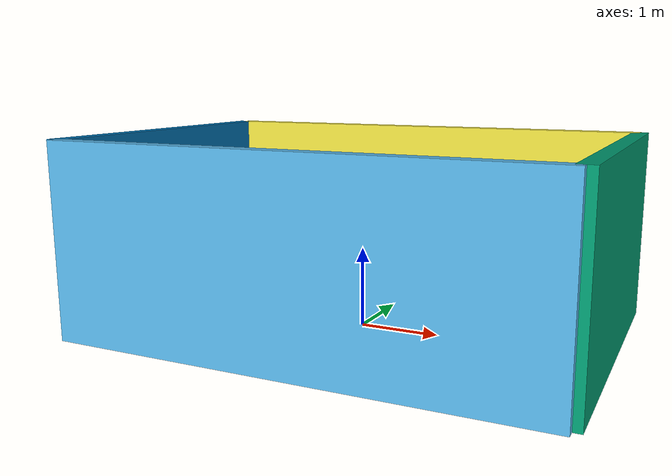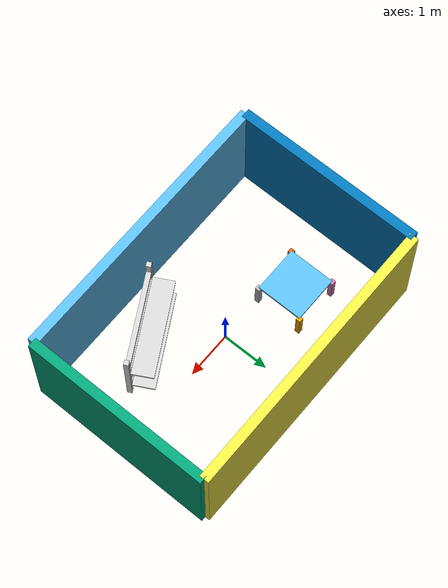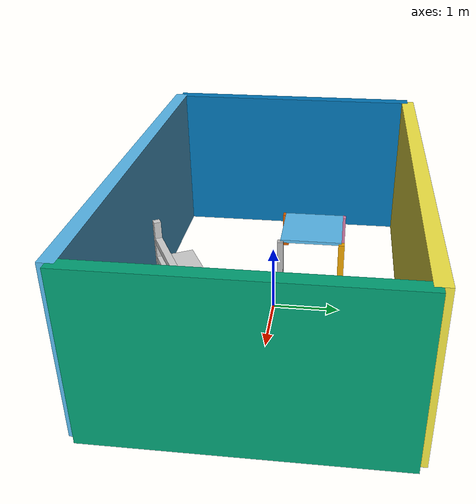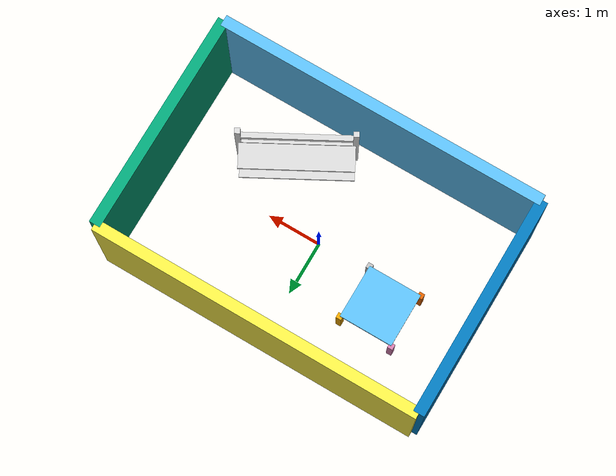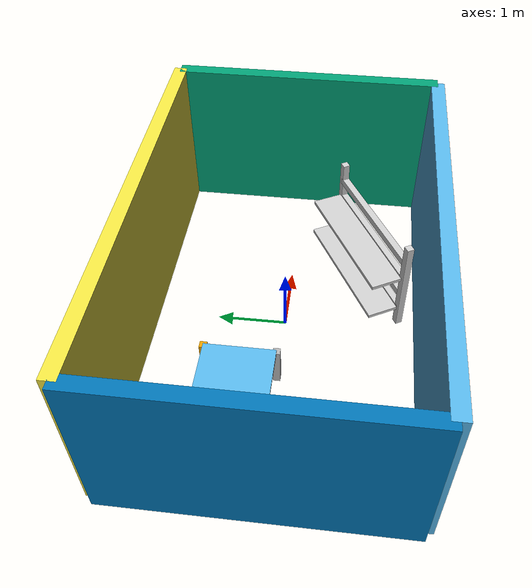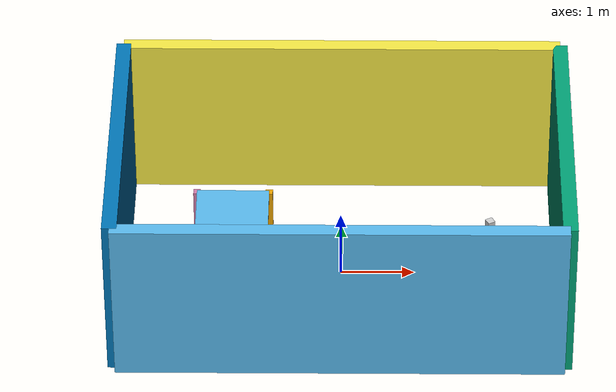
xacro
<?xml version="1.0"?>
<robot name="storage"
       version="1.0"
       xmlns:xacro="http://ros.org/wiki/xacro">

  <material name="grey">
    <color rgba="0.8 0.8 0.8 1"/>
  </material>

  <link name="storage_origin"/>

  <!-- WALLS -->

  <xacro:macro name="wall" params="parent name size *origin">
    <link name="${name}_link">
      <visual>
        <geometry>
          <box size="${size}"/>
        </geometry>
      </visual>
      <collision>
        <geometry>
          <box size="${size}"/>
        </geometry>
      </collision>
    </link>

    <joint type="fixed" name="${name}_joint">
      <xacro:insert_block name="origin"/>
      <parent link="${parent}"/>
      <child link="${name}_link"/>
    </joint>
  </xacro:macro>

  <xacro:property name="wall_thickness" value="0.2" />
  <xacro:property name="wall_height" value="2.4" />
  <xacro:property name="room_link" value="storage_origin" />
  <xacro:wall parent="${room_link}" name="back_wall"
        size="6.0 ${wall_thickness} ${wall_height}">
    <origin xyz="0.0 -2.0 ${wall_height/2}" rpy="0 0 0"/>
  </xacro:wall>
  <xacro:wall parent="${room_link}" name="left_wall"
        size="${wall_thickness} 4.0 ${wall_height}">
    <origin xyz="3.0 0.0 ${wall_height/2}" rpy="0 0 0"/>
  </xacro:wall>
  <xacro:wall parent="${room_link}" name="front_wall"
        size="6.0 ${wall_thickness} ${wall_height}">
    <origin xyz="0.0 2.0 ${wall_height/2}" rpy="0 0 0"/>
  </xacro:wall>
  <xacro:wall parent="${room_link}" name="right_wall"
        size="${wall_thickness} 4.0 ${wall_height}">
    <origin xyz="-3.0 0.0 ${wall_height/2}" rpy="0 0 0"/>
  </xacro:wall>

  <!-- SHELF -->

  <link name="left_leg">
    <visual>
      <material name="grey"/>
      <origin xyz="0 0 0.75"/>
      <geometry>
        <box size="0.1 0.1 1.5"/>
      </geometry>
    </visual>
    <collision>
      <origin xyz="0 0 0.75"/>
      <geometry>
        <box size="0.1 0.1 1.5"/>
      </geometry>
    </collision>
  </link>

  <link name="right_leg">
    <visual>
      <geometry>
        <box size="0.1 0.1 1.5"/>
      </geometry>
      <origin xyz="0 0 0.75"/>
      <material name="grey"/>

    </visual>
    <collision>
      <origin xyz="0 0 0.75"/>
      <geometry>
        <box size="0.1 0.1 1.5"/>
      </geometry>
    </collision>
  </link>

  <link name="bar0">
    <visual>
      <material name="grey"/>
      <origin xyz="-1 0 0"/>
      <geometry>
        <box size="2 0.1 0.1"/>
      </geometry>
    </visual>
    <collision>
      <origin xyz="-1 0 0"/>
      <geometry>
        <box size="2 0.1 0.1"/>
      </geometry>
    </collision>
  </link>

  <link name="board0">
    <visual>
      <material name="grey"/>
      <origin xyz="0 0.25 0"/>
      <geometry>
        <box size="2 0.5 0.05"/>
      </geometry>
    </visual>
    <collision>
      <origin xyz="0 0.25 0"/>
      <geometry>
        <box size="2 0.5 0.05"/>
      </geometry>
    </collision>
  </link>

  <link name="bar1">
    <visual>
      <material name="grey"/>
      <origin xyz="-1 0 0"/>
      <geometry>
        <box size="2 0.1 0.1"/>
      </geometry>
    </visual>
    <collision>
      <origin xyz="-1 0 0"/>
      <geometry>
        <box size="2 0.1 0.1"/>
      </geometry>
    </collision>
  </link>

  <link name="bar2">
    <visual>
      <material name="grey"/>
      <origin xyz="-1 0 0"/>
      <geometry>
        <box size="2 0.1 0.1"/>
      </geometry>
    </visual>
    <collision>
      <origin xyz="-1 0 0"/>
      <geometry>
        <box size="2 0.1 0.1"/>
      </geometry>
    </collision>
  </link>

  <link name="board2">
    <visual>
      <material name="grey"/>
      <origin xyz="0 0.25 0"/>
      <geometry>
        <box size="2 0.5 0.05"/>
      </geometry>
    </visual>
    <collision>
      <origin xyz="0 0.25 0"/>
      <geometry>
        <box size="2 0.5 0.05"/>
      </geometry>
    </collision>
  </link>

  <link name="bar3">
    <visual>
      <material name="grey"/>
      <origin xyz="-1 0 0"/>
      <geometry>
        <box size="2 0.1 0.1"/>
      </geometry>
    </visual>
    <collision>
      <origin xyz="-1 0 0"/>
      <geometry>
        <box size="2 0.1 0.1"/>
      </geometry>
    </collision>
  </link>

  <joint name="board0_to_bar0" type="fixed">
    <parent link="bar0"/>
    <child link="board0"/>
    <origin xyz="-1 0 0"/>
  </joint>

  <joint name="board2_to_bar2" type="fixed">
    <parent link="bar2"/>
    <child link="board2"/>
    <origin xyz="-1 0 0"/>
  </joint>

  <joint name="bar3_to_left_leg" type="fixed">
    <parent link="left_leg"/>
    <child link="bar3"/>
    <origin xyz="0 0 1.2"/>
  </joint>

  <joint name="bar2_to_left_leg" type="fixed">
    <parent link="left_leg"/>
    <child link="bar2"/>
    <origin xyz="0 0 0.9"/>
  </joint>

  <joint name="bar1_to_left_leg" type="fixed">
    <parent link="left_leg"/>
    <child link="bar1"/>
    <origin xyz="0 0 0.6"/>
  </joint>

  <joint name="bar0_to_left_leg" type="fixed">
    <parent link="left_leg"/>
    <child link="bar0"/>
    <origin xyz="0 0 0.3"/>
  </joint>

  <joint name="left_to_right_leg" type="fixed">
    <parent link="left_leg"/>
    <child link="right_leg"/>
    <origin xyz="-2 0 0"/>
  </joint>

  <joint name="left_leg_to_storage_origin" type="fixed">
    <parent link="storage_origin"/>
    <child link="left_leg"/>
    <origin xyz="2.0 -0.7 0" rpy="0 0 0.5"/>
  </joint>

  <!-- TABLE -->

  <link name="left_front_leg">
    <collision>
      <origin xyz="0 0 0.3"/>
      <geometry>
        <box size="0.1 0.1 0.6"/>
      </geometry>
    </collision>
    <visual>
      <origin xyz="0 0 0.3"/>
      <geometry>
        <box size="0.1 0.1 0.6"/>
      </geometry>
    </visual>
  </link>

  <link name="right_front_leg">
    <collision>
      <origin xyz="0 0 0.3"/>
      <geometry>
        <box size="0.1 0.1 0.6"/>
      </geometry>
    </collision>
    <visual>
      <origin xyz="0 0 0.3"/>
      <geometry>
        <box size="0.1 0.1 0.6"/>
      </geometry>
    </visual>
  </link>

  <link name="left_back_leg">
    <collision>
      <origin xyz="0 0 0.3"/>
      <geometry>
        <box size="0.1 0.1 0.6"/>
      </geometry>
    </collision>
    <visual>
      <origin xyz="0 0 0.3"/>
      <geometry>
        <box size="0.1 0.1 0.6"/>
      </geometry>
    </visual>
  </link>

  <link name="right_back_leg">
    <collision>
      <origin xyz="0 0 0.3"/>
      <geometry>
        <box size="0.1 0.1 0.6"/>
      </geometry>
    </collision>
    <visual>
      <origin xyz="0 0 0.3"/>
      <geometry>
        <box size="0.1 0.1 0.6"/>
      </geometry>
    </visual>
  </link>

  <link name="top">
    <collision>
      <geometry>
        <box size="1 1 0.05"/>
      </geometry>
    </collision>
    <visual>
      <geometry>
        <box size="1 1 0.05"/>
      </geometry>
    </visual>
  </link>

  <joint name="origin_to_left_front_leg" type="fixed">
    <parent link="storage_origin"/>
    <child link="left_front_leg"/>
    <origin xyz="-2 0 0"/>
  </joint>

  <joint name="left_front_to_back" type="fixed">
    <parent link="left_front_leg"/>
    <child link="left_back_leg"/>
    <origin xyz="1 0 0"/>
  </joint>

  <joint name="left_front_to_right_front" type="fixed">
    <parent link="left_front_leg"/>
    <child link="right_front_leg"/>
    <origin xyz="0 1 0"/>
  </joint>

  <joint name="left_front_to_right_back" type="fixed">
    <parent link="left_front_leg"/>
    <child link="right_back_leg"/>
    <origin xyz="1 1 0"/>
  </joint>

  <joint name="left_front_leg_to_top" type="fixed">
    <parent link="left_front_leg"/>
    <child link="top"/>
    <origin xyz="0.5 0.5 0.6"/>
  </joint>

</robot>
